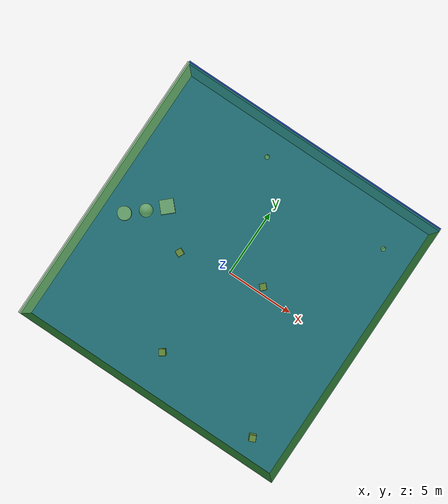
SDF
<sdf version="1.4">
 <world name="default">
  <physics type="ode">
   <max_step_size>0.001</max_step_size>
   <real_time_factor>1</real_time_factor>
   <real_time_update_rate>1000</real_time_update_rate>
   <gravity>0 0 -9.8</gravity>
  </physics>
  <scene><ambient>0.4 0.4 0.4 1</ambient><background>0.7 0.7 0.7 1</background><shadows>1</shadows></scene>
  <model name="Surrounding">
   <static>1</static>
   <link name="Ceiling">
    <collision name="Ceiling_Collision"><geometry><box><size>20 20 0.1</size></box></geometry></collision>
    <visual name="Ceiling_Visual">
     <geometry><box><size>20 20 0.1</size></box></geometry>
     <material>
      <script><uri>file://media/materials/scripts/gazebo.material</uri><name>Gazebo/GreenTransparent</name></script>
     </material>
    </visual>
    <pose>0 0 4.05 0 0 0</pose>
   </link>
   <link name="Wall_South">
    <collision name="Wall_South_Collision">
     <geometry><box><size>20 0 4</size></box></geometry>
     <pose>0 0 2 0 -0 0</pose>
    </collision>
    <visual name="Wall_South_Visual">
     <pose>0 0 2 0 -0 0</pose>
     <geometry><box><size>20 0 4</size></box></geometry>
     <material>
      <script><uri>file://media/materials/scripts/gazebo.material</uri><name>Gazebo/FlatBlack</name></script>
     </material>
    </visual>
    <velocity_decay><linear>0</linear><angular>0</angular></velocity_decay>
    <pose>0 -10 0 0 -0 0</pose>
   </link>
   <link name="Wall_East">
    <collision name="Wall_21_Collision">
     <geometry><box><size>20 0 4</size></box></geometry>
     <pose>0 0 2 0 -0 0</pose>
    </collision>
    <visual name="Wall_21_Visual">
     <pose>0 0 2 0 -0 0</pose>
     <geometry><box><size>20 0 4</size></box></geometry>
     <material>
      <script><uri>file://media/materials/scripts/gazebo.material</uri><name>Gazebo/DarkGrey</name></script>
     </material>
    </visual>
    <velocity_decay><linear>0</linear><angular>0</angular></velocity_decay>
    <pose>10 0 0 0 -0 1.5708</pose>
   </link>
   <link name="Wall_North">
    <collision name="Wall_22_Collision">
     <geometry><box><size>20 0.2 4</size></box></geometry>
     <pose>0 0 2 0 -0 0</pose>
    </collision>
    <visual name="Wall_22_Visual">
     <pose>0 0 2 0 -0 0</pose>
     <geometry><box><size>20 0.2 4</size></box></geometry>
     <material>
      <script><uri>file://media/materials/scripts/gazebo.material</uri><name>Gazebo/BlueLaser</name></script>
     </material>
    </visual>
    <velocity_decay><linear>0</linear><angular>0</angular></velocity_decay>
    <pose>0 10 0 0 -0 0</pose>
   </link>
   <link name="Wall_West">
    <collision name="Wall_23_Collision">
     <geometry><box><size>20 0.2 4</size></box></geometry>
     <pose>0 0 2 0 -0 0</pose>
    </collision>
    <visual name="Wall_23_Visual">
     <pose>0 0 2 0 -0 0</pose>
     <geometry><box><size>20 0.2 4</size></box></geometry>
     <material>
      <script><uri>file://media/materials/scripts/gazebo.material</uri><name>Gazebo/CeilingTiled</name></script>
     </material>
    </visual>
    <velocity_decay><linear>0</linear><angular>0</angular></velocity_decay>
    <pose>-10 0 0 0 0 -1.5708</pose>
   </link>
   <link name="Ground_link">
    <collision name="collision">
     <pose>0 0 .05 0 -0 0</pose>
     <geometry><box><size>20 20 0.1</size></box></geometry>
    </collision>
    <visual name="visual">
     <pose>0 0 .05 0 -0 0</pose>
     <geometry><box><size>20 20 0.1</size></box></geometry>
     <material>
      <script><uri>file://media/materials/scripts/gazebo.material</uri><name>Gazebo/BlueGlow</name></script>
     </material>
    </visual>
   </link>
   <static>1</static>
  </model>
  <spherical_coordinates>
   <surface_model>EARTH_WGS84</surface_model>
   <latitude_deg>0</latitude_deg>
   <longitude_deg>0</longitude_deg>
   <elevation>0</elevation>
   <heading_deg>0</heading_deg>
  </spherical_coordinates>
  <light name="lightball_0" type="diffuse">
   <diffuse>0.8 0.8 0.8 1</diffuse>
   <specular>0.2 0.2 0.2 1</specular>
   <attenuation>
    <range>100</range>
    <constant>0.7</constant>
    <linear>0.01</linear>
    <quadratic>0.001</quadratic>
   </attenuation>
   <direction>-0.5 0.1 -0.9</direction>
   <pose>6.34036262656 1.7141849725 1.82699466666 0 0 0</pose>
  </light>
  <light name="lightball_1" type="diffuse">
   <diffuse>0.8 0.8 0.8 1</diffuse>
   <specular>0.2 0.2 0.2 1</specular>
   <attenuation>
    <range>100</range>
    <constant>0.7</constant>
    <linear>0.01</linear>
    <quadratic>0.001</quadratic>
   </attenuation>
   <direction>-0.5 0.1 -0.9</direction>
   <pose>-2.25452991028 2.44329691686 3.07022563828 0 0 0</pose>
  </light>
  <light name="lightball_2" type="diffuse">
   <diffuse>0.8 0.8 0.8 1</diffuse>
   <specular>0.2 0.2 0.2 1</specular>
   <attenuation>
    <range>100</range>
    <constant>0.7</constant>
    <linear>0.01</linear>
    <quadratic>0.001</quadratic>
   </attenuation>
   <direction>-0.5 0.1 -0.9</direction>
   <pose>8.75405665363 -5.10734236919 3.0680507887 0 0 0</pose>
  </light>
  <light name="lightball_3" type="diffuse">
   <diffuse>0.8 0.8 0.8 1</diffuse>
   <specular>0.2 0.2 0.2 1</specular>
   <attenuation>
    <range>100</range>
    <constant>0.7</constant>
    <linear>0.01</linear>
    <quadratic>0.001</quadratic>
   </attenuation>
   <direction>-0.5 0.1 -0.9</direction>
   <pose>-2.3339505401 3.17220741317 3.47085068235 0 0 0</pose>
  </light>
  <light name="lightball_4" type="diffuse">
   <diffuse>0.8 0.8 0.8 1</diffuse>
   <specular>0.2 0.2 0.2 1</specular>
   <attenuation>
    <range>100</range>
    <constant>0.7</constant>
    <linear>0.01</linear>
    <quadratic>0.001</quadratic>
   </attenuation>
   <direction>-0.5 0.1 -0.9</direction>
   <pose>3.36354368143 3.98491401192 1.25736497171 0 0 0</pose>
  </light>
  <light name="lightball_5" type="diffuse">
   <diffuse>0.8 0.8 0.8 1</diffuse>
   <specular>0.2 0.2 0.2 1</specular>
   <attenuation>
    <range>100</range>
    <constant>0.7</constant>
    <linear>0.01</linear>
    <quadratic>0.001</quadratic>
   </attenuation>
   <direction>-0.5 0.1 -0.9</direction>
   <pose>4.58426683412 7.50511627572 2.44851137933 0 0 0</pose>
  </light>
  <light name="lightball_6" type="diffuse">
   <diffuse>0.8 0.8 0.8 1</diffuse>
   <specular>0.2 0.2 0.2 1</specular>
   <attenuation>
    <range>100</range>
    <constant>0.7</constant>
    <linear>0.01</linear>
    <quadratic>0.001</quadratic>
   </attenuation>
   <direction>-0.5 0.1 -0.9</direction>
   <pose>-8.18594492598 -7.50207214245 1.75093106078 0 0 0</pose>
  </light>
  <light name="lightball_7" type="diffuse">
   <diffuse>0.8 0.8 0.8 1</diffuse>
   <specular>0.2 0.2 0.2 1</specular>
   <attenuation>
    <range>100</range>
    <constant>0.7</constant>
    <linear>0.01</linear>
    <quadratic>0.001</quadratic>
   </attenuation>
   <direction>-0.5 0.1 -0.9</direction>
   <pose>7.54219360803 0.165333430075 3.52125556188 0 0 0</pose>
  </light>
  <include>
   <uri>model://textured_shapes</uri>
   <pose>-7.28309796371 0.356575178847 0 0 0 2.3172973223</pose>
  </include>
  <include><uri>model://cabinet</uri><pose>-3.64423304159 -0.79529695013 0 0 0 2.71128564687</pose></include>
  <include><uri>model://cabinet</uri><pose>-0.810466264723 -7.15157036256 0 0 0 0.620178717343</pose></include>
  <include>
   <uri>model://construction_cone</uri>
   <pose>-2.36460954853 8.14429054234 0 0 0 2.08167713081</pose>
  </include>
  <include><uri>model://cabinet</uri><pose>2.43380406576 0.435593795814 0 0 0 0.790313921822</pose></include>
  <include><uri>model://cabinet</uri><pose>7.60859532545 -8.5662878785 0 0 0 1.98671974512</pose></include>
  <include>
   <uri>model://construction_cone</uri>
   <pose>7.90558023991 7.32531377995 0 0 0 0.625908506741</pose>
  </include>
 </world>
</sdf>

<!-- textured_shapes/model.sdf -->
<sdf version="1.6">
  <model name="textured_shapes">
    <pose>0 0 0.5 0 0 0</pose>
    <link name="box">
      <pose>0 -1.5 0 0 0 0</pose>
      <collision name="collision">
        <geometry>
          <box>
            <size>1 1 1</size>
          </box>
        </geometry>
      </collision>
      <visual name="visual">
        <geometry>
          <box>
            <size>1 1 1</size>
          </box>
        </geometry>
        <material>
          <script>
            <uri>model://../model_source/models/textured_shapes/materials/scripts</uri>
            <uri>model://../model_source/models/textured_shapes/materials/textures</uri>
            <name>TexturedShape/Squares</name>
          </script>
        </material>
      </visual>
    </link>
    <link name="sphere">
      <collision name="collision">
        <geometry>
          <sphere>
            <radius>0.5</radius>
          </sphere>
        </geometry>
      </collision>
      <visual name="visual">
        <geometry>
          <sphere>
            <radius>0.5</radius>
          </sphere>
        </geometry>
        <material>
          <script>
            <uri>model://../model_source/models/textured_shapes/materials/scripts</uri>
            <uri>model://../model_source/models/textured_shapes/materials/textures</uri>
            <name>TexturedShape/Squares</name>
          </script>
        </material>
      </visual>
    </link>
    <link name="cylinder">
      <pose>0 1.5 0 0 0 0</pose>
      <collision name="collision">
        <geometry>
          <cylinder>
            <radius>0.5</radius>
            <length>1</length>
          </cylinder>
        </geometry>
      </collision>
      <visual name="visual">
        <geometry>
          <cylinder>
            <radius>0.5</radius>
            <length>1</length>
          </cylinder>
        </geometry>
        <material>
          <script>
            <uri>model://../model_source/models/textured_shapes/materials/scripts</uri>
            <uri>model://../model_source/models/textured_shapes/materials/textures</uri>
            <name>TexturedShape/Squares</name>
          </script>
        </material>
      </visual>
    </link>
  </model>
</sdf>

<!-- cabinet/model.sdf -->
<sdf version="1.5">
  <model name="cabinet">
    <static>true</static>
    <link name="cabinet_bottom_plate">
      <inertial>
        <pose>0 0 -1 0 0 0</pose>
        <inertia>
          <ixx>2.050000</ixx>
          <ixy>0</ixy>
          <ixz>0</ixz>
          <iyy>2.050000</iyy>
          <iyz>0</iyz>
          <izz>2.050000</izz>
        </inertia>
        <mass>25.000000</mass>
      </inertial>
      <collision name="cabinet_bottom_plate_geom">
        <pose>0 0 0.010000 0 0 0</pose>
        <geometry>
          <box>
            <size>0.450000 0.450000 0.020000</size>
          </box>
        </geometry>
      </collision>
      <visual name="cabinet_bottom_plate_geom_visual">
        <pose>0 0 0.010000 0 0 0</pose>
        <geometry>
          <box>
            <size>0.450000 0.450000 0.020000</size>
          </box>
        </geometry>
        <material>
          <script>
            <uri>model://media/materials/scripts/gazebo.material</uri>
            <name>Gazebo/Wood</name>
          </script>
        </material>
      </visual>
      <collision name="cabinet_bottom_plate_geom_cabinet_back_plate">
        <pose>0.235000 0 0.510000 0 0 0</pose>
        <geometry>
          <box>
            <size>0.020000 0.450000 1.020000</size>
          </box>
        </geometry>
      </collision>
      <visual name="cabinet_bottom_plate_geom_cabinet_back_plate_visual">
        <pose>0.235000 0 0.510000 0 0 0</pose>
        <geometry>
          <box>
            <size>0.020000 0.450000 1.020000</size>
          </box>
        </geometry>
        <material>
          <script>
            <uri>model://media/materials/scripts/gazebo.material</uri>
            <name>Gazebo/Wood</name>
          </script>
        </material>
      </visual>
      <collision name="cabinet_bottom_plate_geom_cabinet_left_plate">
        <pose>0 0.235000 0.510000 0 0 0</pose>
        <geometry>
          <box>
            <size>0.450000 0.020000 1.020000</size>
          </box>
        </geometry>
      </collision>
      <visual name="cabinet_bottom_plate_geom_cabinet_left_plate_visual">
        <pose>0 0.235000 0.510000 0 0 0</pose>
        <geometry>
          <box>
            <size>0.450000 0.020000 1.020000</size>
          </box>
        </geometry>
        <material>
          <script>
            <uri>model://media/materials/scripts/gazebo.material</uri>
            <name>Gazebo/Wood</name>
          </script>
        </material>
      </visual>
      <collision name="cabinet_bottom_plate_geom_cabinet_middle_plate">
        <pose>0 0 0.510000 0 0 0</pose>
        <geometry>
          <box>
            <size>0.450000 0.450000 0.020000</size>
          </box>
        </geometry>
      </collision>
      <visual name="cabinet_bottom_plate_geom_cabinet_middle_plate_visual">
        <pose>0 0 0.510000 0 0 0</pose>
        <geometry>
          <box>
            <size>0.450000 0.450000 0.020000</size>
          </box>
        </geometry>
        <material>
          <script>
            <uri>model://media/materials/scripts/gazebo.material</uri>
            <name>Gazebo/Wood</name>
          </script>
        </material>
      </visual>
      <collision name="cabinet_bottom_plate_geom_cabinet_right_plate">
        <pose>0 -0.235000 0.510000 0 0 0</pose>
        <geometry>
          <box>
            <size>0.450000 0.020000 1.020000</size>
          </box>
        </geometry>
      </collision>
      <visual name="cabinet_bottom_plate_geom_cabinet_right_plate_visual">
        <pose>0 -0.235000 0.510000 0 0 0</pose>
        <geometry>
          <box>
            <size>0.450000 0.020000 1.020000</size>
          </box>
        </geometry>
        <material>
          <script>
            <uri>model://media/materials/scripts/gazebo.material</uri>
            <name>Gazebo/Wood</name>
          </script>
        </material>
      </visual>
      <collision name="cabinet_bottom_plate_geom_cabinet_top_plate">
        <pose>0 0 1.010000 0 0 0</pose>
        <geometry>
          <box>
            <size>0.450000 0.450000 0.020000</size>
          </box>
        </geometry>
      </collision>
      <visual name="cabinet_bottom_plate_geom_cabinet_top_plate_visual">
        <pose>0 0 1.010000 0 0 0</pose>
        <geometry>
          <box>
            <size>0.450000 0.450000 0.020000</size>
          </box>
        </geometry>
        <material>
          <script>
            <uri>model://media/materials/scripts/gazebo.material</uri>
            <name>Gazebo/Wood</name>
          </script>
        </material>
      </visual>
    </link>
  </model>
</sdf>

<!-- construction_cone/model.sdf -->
<sdf version="1.5">
  <model name="Construction Cone">
    <link name="link">
      <collision name="collision">
        <geometry>
          <mesh>
            <scale>10 10 10</scale>
            <uri>file://isr-testbed/construction_cone/meshes/construction_cone.dae</uri>
          </mesh>
        </geometry>
      </collision>
      <visual name="visual">
        <geometry>
          <mesh>
            <scale>10 10 10</scale>
            <uri>file://isr-testbed/construction_cone/meshes/construction_cone.dae</uri>
          </mesh>
        </geometry>
      </visual>
    </link>
  </model>
</sdf>
